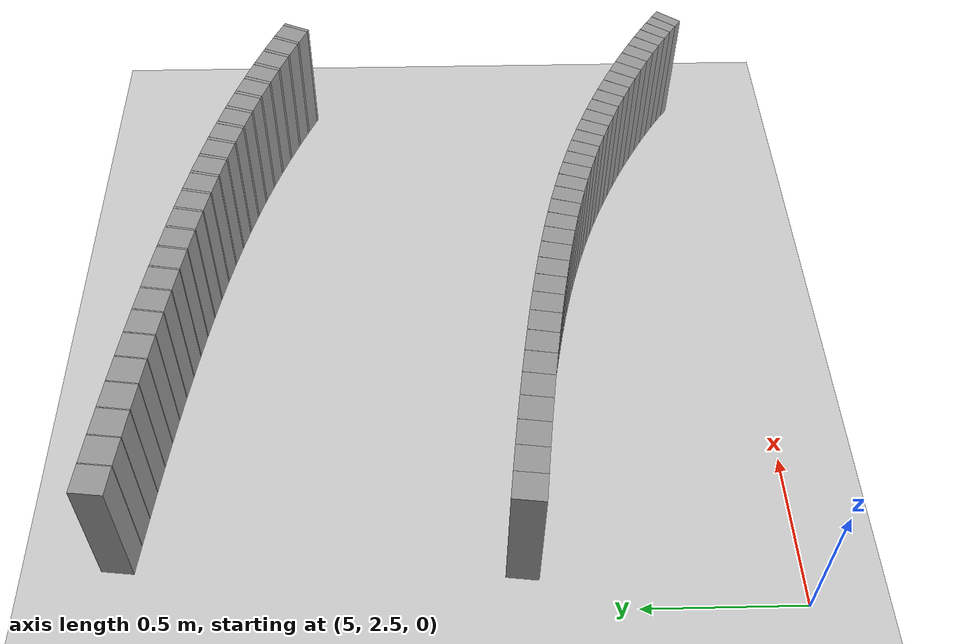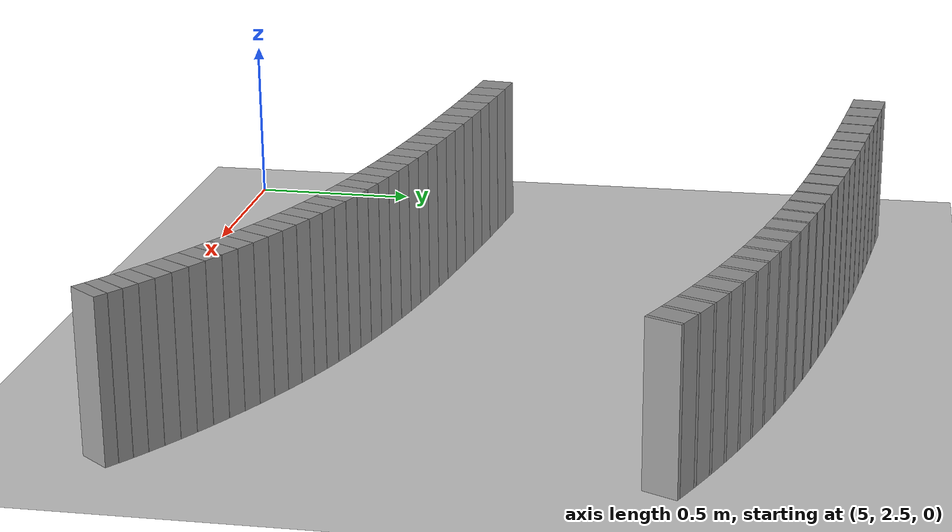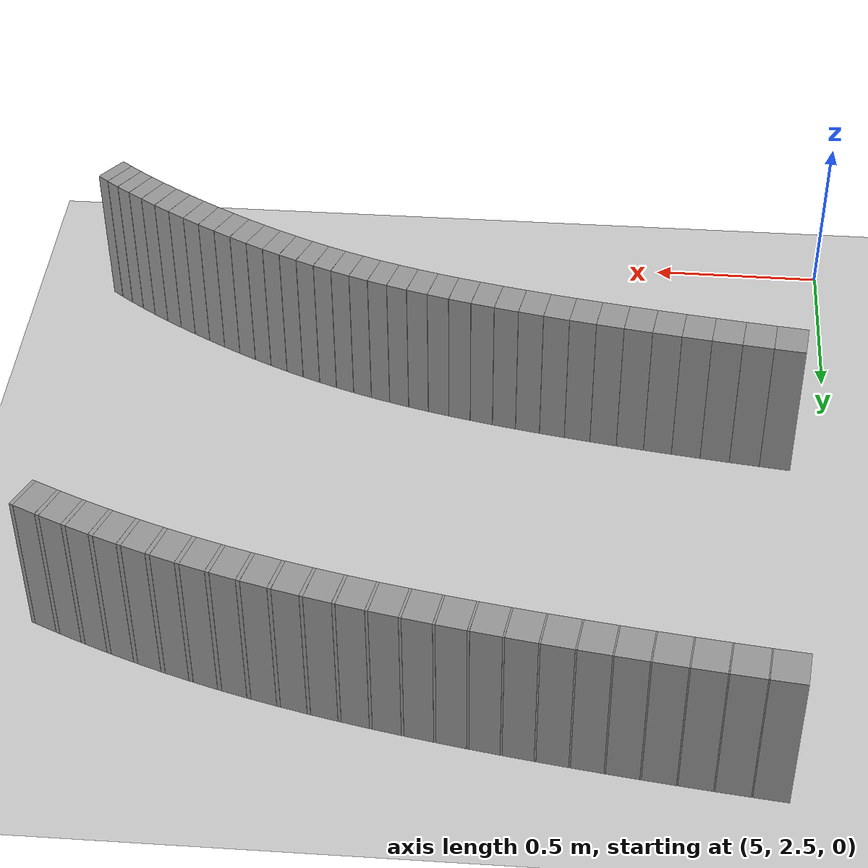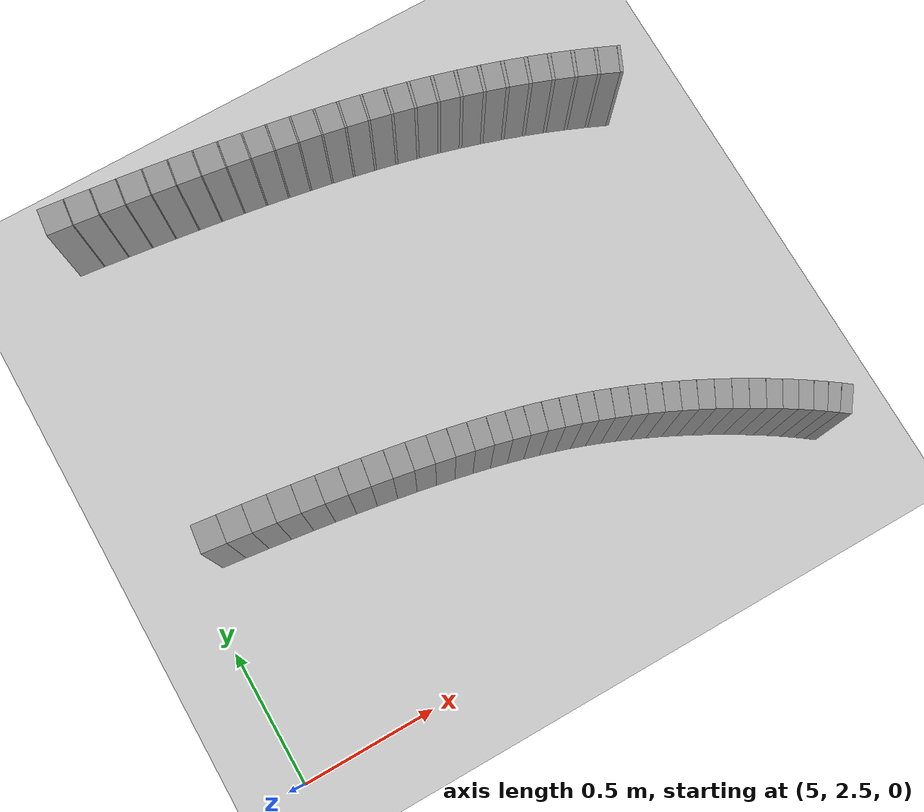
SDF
<sdf version="1.6">
 <world name="default">
  <include><uri>model://ground_plane</uri></include>
  <include><uri>model://sun</uri></include>
  <model name="wall_802_outward">
   <static>true</static>
   <link name="link">
    <collision name="collision">
     <geometry><box><size>0.038242317033586916 0.1 0.45</size></box></geometry>
    </collision>
    <visual name="visual">
     <geometry><box><size>0.038242317033586916 0.1 0.45</size></box></geometry>
     <material>
      <script><uri>file://media/materials/scripts/gazebo.material</uri><name>Gazebo/Gray</name></script>
     </material>
    </visual>
   </link>
   <pose>7.168864477292568 2.69422921812316 0.225 0 0 2.4924702044421876</pose>
  </model>
  <model name="wall_803_outward">
   <static>true</static>
   <link name="link">
    <collision name="collision">
     <geometry><box><size>0.04258518547714131 0.1 0.45</size></box></geometry>
    </collision>
    <visual name="visual">
     <geometry><box><size>0.04258518547714131 0.1 0.45</size></box></geometry>
     <material>
      <script><uri>file://media/materials/scripts/gazebo.material</uri><name>Gazebo/Gray</name></script>
     </material>
    </visual>
   </link>
   <pose>7.136335868385405 2.718205793104113 0.225 0 0 2.5189167862136808</pose>
  </model>
  <model name="wall_804_outward">
   <static>true</static>
   <link name="link">
    <collision name="collision">
     <geometry><box><size>0.04634672330390868 0.1 0.45</size></box></geometry>
    </collision>
    <visual name="visual">
     <geometry><box><size>0.04634672330390868 0.1 0.45</size></box></geometry>
     <material>
      <script><uri>file://media/materials/scripts/gazebo.material</uri><name>Gazebo/Gray</name></script>
     </material>
    </visual>
   </link>
   <pose>7.099903612297514 2.7436938421278008 0.225 0 0 2.5423603975698112</pose>
  </model>
  <model name="wall_805_outward">
   <static>true</static>
   <link name="link">
    <collision name="collision">
     <geometry><box><size>0.04948248564608676 0.1 0.45</size></box></geometry>
    </collision>
    <visual name="visual">
     <geometry><box><size>0.04948248564608676 0.1 0.45</size></box></geometry>
     <material>
      <script><uri>file://media/materials/scripts/gazebo.material</uri><name>Gazebo/Gray</name></script>
     </material>
    </visual>
   </link>
   <pose>7.060047574978048 2.770284268100689 0.225 0 0 2.5634443342759394</pose>
  </model>
  <model name="wall_806_outward">
   <static>true</static>
   <link name="link">
    <collision name="collision">
     <geometry><box><size>0.051990060496237916 0.1 0.45</size></box></geometry>
    </collision>
    <visual name="visual">
     <geometry><box><size>0.051990060496237916 0.1 0.45</size></box></geometry>
     <material>
      <script><uri>file://media/materials/scripts/gazebo.material</uri><name>Gazebo/Gray</name></script>
     </material>
    </visual>
   </link>
   <pose>7.017287153991127 2.7975876817618355 0.225 0 0 2.5827381035758443</pose>
  </model>
  <model name="wall_807_outward">
   <static>true</static>
   <link name="link">
    <collision name="collision">
     <geometry><box><size>0.053884182399699755 0.1 0.45</size></box></geometry>
    </collision>
    <visual name="visual">
     <geometry><box><size>0.053884182399699755 0.1 0.45</size></box></geometry>
     <material>
      <script><uri>file://media/materials/scripts/gazebo.material</uri><name>Gazebo/Gray</name></script>
     </material>
    </visual>
   </link>
   <pose>6.972149504210314 2.8252409459897985 0.225 0 0 2.60079617092309</pose>
  </model>
  <model name="wall_808_outward">
   <static>true</static>
   <link name="link">
    <collision name="collision">
     <geometry><box><size>0.05521312916296881 0.1 0.45</size></box></geometry>
    </collision>
    <visual name="visual">
     <geometry><box><size>0.05521312916296881 0.1 0.45</size></box></geometry>
     <material>
      <script><uri>file://media/materials/scripts/gazebo.material</uri><name>Gazebo/Gray</name></script>
     </material>
    </visual>
   </link>
   <pose>6.925142599260379 2.8529119413225437 0.225 0 0 2.6181020740563015</pose>
  </model>
  <model name="wall_809_outward">
   <static>true</static>
   <link name="link">
    <collision name="collision">
     <geometry><box><size>0.05602713953938882 0.1 0.45</size></box></geometry>
    </collision>
    <visual name="visual">
     <geometry><box><size>0.05602713953938882 0.1 0.45</size></box></geometry>
     <material>
      <script><uri>file://media/materials/scripts/gazebo.material</uri><name>Gazebo/Gray</name></script>
     </material>
    </visual>
   </link>
   <pose>6.87673681073194 2.880302741202522 0.225 0 0 2.635085670724866</pose>
  </model>
  <model name="wall_810_outward">
   <static>true</static>
   <link name="link">
    <collision name="collision">
     <geometry><box><size>0.056422150083031315 0.1 0.45</size></box></geometry>
    </collision>
    <visual name="visual">
     <geometry><box><size>0.056422150083031315 0.1 0.45</size></box></geometry>
     <material>
      <script><uri>file://media/materials/scripts/gazebo.material</uri><name>Gazebo/Gray</name></script>
     </material>
    </visual>
   </link>
   <pose>6.82734145121558 2.9071556521440742 0.225 0 0 2.6521572470372843</pose>
  </model>
  <model name="wall_811_outward">
   <static>true</static>
   <link name="link">
    <collision name="collision">
     <geometry><box><size>0.056501811116098435 0.1 0.45</size></box></geometry>
    </collision>
    <visual name="visual">
     <geometry><box><size>0.056501811116098435 0.1 0.45</size></box></geometry>
     <material>
      <script><uri>file://media/materials/scripts/gazebo.material</uri><name>Gazebo/Gray</name></script>
     </material>
    </visual>
   </link>
   <pose>6.777280799987066 2.933263983801722 0.225 0 0 2.6695637264377887</pose>
  </model>
  <model name="wall_812_outward">
   <static>true</static>
   <link name="link">
    <collision name="collision">
     <geometry><box><size>0.05635191686572317 0.1 0.45</size></box></geometry>
    </collision>
    <visual name="visual">
     <geometry><box><size>0.05635191686572317 0.1 0.45</size></box></geometry>
     <material>
      <script><uri>file://media/materials/scripts/gazebo.material</uri><name>Gazebo/Gray</name></script>
     </material>
    </visual>
   </link>
   <pose>6.726798296559092 2.958468170584054 0.225 0 0 2.687525306707204</pose>
  </model>
  <model name="wall_813_outward">
   <static>true</static>
   <link name="link">
    <collision name="collision">
     <geometry><box><size>0.056083336484518576 0.1 0.45</size></box></geometry>
    </collision>
    <visual name="visual">
     <geometry><box><size>0.056083336484518576 0.1 0.45</size></box></geometry>
     <material>
      <script><uri>file://media/materials/scripts/gazebo.material</uri><name>Gazebo/Gray</name></script>
     </material>
    </visual>
   </link>
   <pose>6.67605201909444 2.982654151380342 0.225 0 0 2.706188824063292</pose>
  </model>
  <model name="wall_814_outward">
   <static>true</static>
   <link name="link">
    <collision name="collision">
     <geometry><box><size>0.05580883810693003 0.1 0.45</size></box></geometry>
    </collision>
    <visual name="visual">
     <geometry><box><size>0.05580883810693003 0.1 0.45</size></box></geometry>
     <material>
      <script><uri>file://media/materials/scripts/gazebo.material</uri><name>Gazebo/Gray</name></script>
     </material>
    </visual>
   </link>
   <pose>6.625102245124215 3.005758067778912 0.225 0 0 2.7255814363818613</pose>
  </model>
  <model name="wall_815_outward">
   <static>true</static>
   <link name="link">
    <collision name="collision">
     <geometry><box><size>0.05562573891653821 0.1 0.45</size></box></geometry>
    </collision>
    <visual name="visual">
     <geometry><box><size>0.05562573891653821 0.1 0.45</size></box></geometry>
     <material>
      <script><uri>file://media/materials/scripts/gazebo.material</uri><name>Gazebo/Gray</name></script>
     </material>
    </visual>
   </link>
   <pose>6.573916814903124 3.027761602947307 0.225 0 0 2.7456451785266482</pose>
  </model>
  <model name="wall_816_outward">
   <static>true</static>
   <link name="link">
    <collision name="collision">
     <geometry><box><size>0.05561741763457717 0.1 0.45</size></box></geometry>
    </collision>
    <visual name="visual">
     <geometry><box><size>0.05561741763457717 0.1 0.45</size></box></geometry>
     <material>
      <script><uri>file://media/materials/scripts/gazebo.material</uri><name>Gazebo/Gray</name></script>
     </material>
    </visual>
   </link>
   <pose>6.522383245281677 3.0486834430116847 0.225 0 0 2.766231831947936</pose>
  </model>
  <model name="wall_817_outward">
   <static>true</static>
   <link name="link">
    <collision name="collision"><geometry><box><size>0.05584769248611 0.1 0.45</size></box></geometry></collision>
    <visual name="visual">
     <geometry><box><size>0.05584769248611 0.1 0.45</size></box></geometry>
     <material>
      <script><uri>file://media/materials/scripts/gazebo.material</uri><name>Gazebo/Gray</name></script>
     </material>
    </visual>
   </link>
   <pose>6.470322772616438 3.0685702645313278 0.225 0 0 2.787132671487821</pose>
  </model>
  <model name="wall_818_outward">
   <static>true</static>
   <link name="link">
    <collision name="collision">
     <geometry><box><size>0.056363490190861634 0.1 0.45</size></box></geometry>
    </collision>
    <visual name="visual">
     <geometry><box><size>0.056363490190861634 0.1 0.45</size></box></geometry>
     <material>
      <script><uri>file://media/materials/scripts/gazebo.material</uri><name>Gazebo/Gray</name></script>
     </material>
    </visual>
   </link>
   <pose>6.41750580800734 3.0874874473768266 0.225 0 0 2.8080961222094953</pose>
  </model>
  <model name="wall_819_outward">
   <static>true</static>
   <link name="link">
    <collision name="collision">
     <geometry><box><size>0.05719926621486981 0.1 0.45</size></box></geometry>
    </collision>
    <visual name="visual">
     <geometry><box><size>0.05719926621486981 0.1 0.45</size></box></geometry>
     <material>
      <script><uri>file://media/materials/scripts/gazebo.material</uri><name>Gazebo/Gray</name></script>
     </material>
    </visual>
   </link>
   <pose>6.363664624629209 3.1055125832829917 0.225 0 0 2.828826470897018</pose>
  </model>
  <model name="wall_820_outward">
   <static>true</static>
   <link name="link">
    <collision name="collision">
     <geometry><box><size>0.058346789809297986 0.1 0.45</size></box></geometry>
    </collision>
    <visual name="visual">
     <geometry><box><size>0.058346789809297986 0.1 0.45</size></box></geometry>
     <material>
      <script><uri>file://media/materials/scripts/gazebo.material</uri><name>Gazebo/Gray</name></script>
     </material>
    </visual>
   </link>
   <pose>6.3085188410530595 3.1227266841968095 0.225 0 0 2.84901499306586</pose>
  </model>
  <model name="wall_821_outward">
   <static>true</static>
   <link name="link">
    <collision name="collision">
     <geometry><box><size>0.05979230419529245 0.1 0.45</size></box></geometry>
    </collision>
    <visual name="visual">
     <geometry><box><size>0.05979230419529245 0.1 0.45</size></box></geometry>
     <material>
      <script><uri>file://media/materials/scripts/gazebo.material</uri><name>Gazebo/Gray</name></script>
     </material>
    </visual>
   </link>
   <pose>6.251797725432926 3.1392069295158116 0.225 0 0 2.8684061145394564</pose>
  </model>
  <model name="wall_822_outward">
   <static>true</static>
   <link name="link">
    <collision name="collision">
     <geometry><box><size>0.06150423191044382 0.1 0.45</size></box></geometry>
    </collision>
    <visual name="visual">
     <geometry><box><size>0.06150423191044382 0.1 0.45</size></box></geometry>
     <material>
      <script><uri>file://media/materials/scripts/gazebo.material</uri><name>Gazebo/Gray</name></script>
     </material>
    </visual>
   </link>
   <pose>6.19325138358998 3.1550255629941852 0.225 0 0 2.8867426427304137</pose>
  </model>
  <model name="wall_823_outward">
   <static>true</static>
   <link name="link">
    <collision name="collision">
     <geometry><box><size>0.06342707123407634 0.1 0.45</size></box></geometry>
    </collision>
    <visual name="visual">
     <geometry><box><size>0.06342707123407634 0.1 0.45</size></box></geometry>
     <material>
      <script><uri>file://media/materials/scripts/gazebo.material</uri><name>Gazebo/Gray</name></script>
     </material>
    </visual>
   </link>
   <pose>6.1326711003218835 3.1702473178162407 0.225 0 0 2.9038401630627417</pose>
  </model>
  <model name="wall_824_outward">
   <static>true</static>
   <link name="link">
    <collision name="collision">
     <geometry><box><size>0.0655048547804826 0.1 0.45</size></box></geometry>
    </collision>
    <visual name="visual">
     <geometry><box><size>0.0655048547804826 0.1 0.45</size></box></geometry>
     <material>
      <script><uri>file://media/materials/scripts/gazebo.material</uri><name>Gazebo/Gray</name></script>
     </material>
    </visual>
   </link>
   <pose>6.06990106730051 3.184928114988227 0.225 0 0 2.9195864742975464</pose>
  </model>
  <model name="wall_825_outward">
   <static>true</static>
   <link name="link">
    <collision name="collision">
     <geometry><box><size>0.0676770381414498 0.1 0.45</size></box></geometry>
    </collision>
    <visual name="visual">
     <geometry><box><size>0.0676770381414498 0.1 0.45</size></box></geometry>
     <material>
      <script><uri>file://media/materials/scripts/gazebo.material</uri><name>Gazebo/Gray</name></script>
     </material>
    </visual>
   </link>
   <pose>6.004841031081018 3.199116779979048 0.225 0 0 2.933917748657639</pose>
  </model>
  <model name="wall_826_outward">
   <static>true</static>
   <link name="link">
    <collision name="collision">
     <geometry><box><size>0.06988344098047915 0.1 0.45</size></box></geometry>
    </collision>
    <visual name="visual">
     <geometry><box><size>0.06988344098047915 0.1 0.45</size></box></geometry>
     <material>
      <script><uri>file://media/materials/scripts/gazebo.material</uri><name>Gazebo/Gray</name></script>
     </material>
    </visual>
   </link>
   <pose>5.937448337389976 3.212855350354433 0.225 0 0 2.9468543698673564</pose>
  </model>
  <model name="wall_827_outward">
   <static>true</static>
   <link name="link">
    <collision name="collision">
     <geometry><box><size>0.07207920211204283 0.1 0.45</size></box></geometry>
    </collision>
    <visual name="visual">
     <geometry><box><size>0.07207920211204283 0.1 0.45</size></box></geometry>
     <material>
      <script><uri>file://media/materials/scripts/gazebo.material</uri><name>Gazebo/Gray</name></script>
     </material>
    </visual>
   </link>
   <pose>5.867730102275232 3.2261799886765075 0.225 0 0 2.9584635036206013</pose>
  </model>
  <model name="wall_828_outward">
   <static>true</static>
   <link name="link">
    <collision name="collision">
     <geometry><box><size>0.07422277385725479 0.1 0.45</size></box></geometry>
    </collision>
    <visual name="visual">
     <geometry><box><size>0.07422277385725479 0.1 0.45</size></box></geometry>
     <material>
      <script><uri>file://media/materials/scripts/gazebo.material</uri><name>Gazebo/Gray</name></script>
     </material>
    </visual>
   </link>
   <pose>5.795734080435574 3.239121999225344 0.225 0 0 2.9688485700468905</pose>
  </model>
  <model name="wall_829_outward">
   <static>true</static>
   <link name="link">
    <collision name="collision">
     <geometry><box><size>0.07629238762877859 0.1 0.45</size></box></geometry>
    </collision>
    <visual name="visual">
     <geometry><box><size>0.07629238762877859 0.1 0.45</size></box></geometry>
     <material>
      <script><uri>file://media/materials/scripts/gazebo.material</uri><name>Gazebo/Gray</name></script>
     </material>
    </visual>
   </link>
   <pose>5.721537180102941 3.2517077383570867 0.225 0 0 2.9781550786518682</pose>
  </model>
  <model name="wall_830_outward">
   <static>true</static>
   <link name="link">
    <collision name="collision">
     <geometry><box><size>0.07826796892992702 0.1 0.45</size></box></geometry>
    </collision>
    <visual name="visual">
     <geometry><box><size>0.07826796892992702 0.1 0.45</size></box></geometry>
     <material>
      <script><uri>file://media/materials/scripts/gazebo.material</uri><name>Gazebo/Gray</name></script>
     </material>
    </visual>
   </link>
   <pose>5.645234966618402 3.263959016661807 0.225 0 0 2.9865159073022878</pose>
  </model>
  <model name="wall_831_outward">
   <static>true</static>
   <link name="link">
    <collision name="collision">
     <geometry><box><size>0.08014915424287852 0.1 0.45</size></box></geometry>
    </collision>
    <visual name="visual">
     <geometry><box><size>0.08014915424287852 0.1 0.45</size></box></geometry>
     <material>
      <script><uri>file://media/materials/scripts/gazebo.material</uri><name>Gazebo/Gray</name></script>
     </material>
    </visual>
   </link>
   <pose>5.566931129710806 3.2758927987192914 0.225 0 0 2.9940998083389627</pose>
  </model>
  <model name="wall_832_outward">
   <static>true</static>
   <link name="link">
    <collision name="collision">
     <geometry><box><size>0.081944593100771 0.1 0.45</size></box></geometry>
    </collision>
    <visual name="visual">
     <geometry><box><size>0.081944593100771 0.1 0.45</size></box></geometry>
     <material>
      <script><uri>file://media/materials/scripts/gazebo.material</uri><name>Gazebo/Gray</name></script>
     </material>
    </visual>
   </link>
   <pose>5.486723466757002 3.2875224038917388 0.225 0 0 3.001028268078703</pose>
  </model>
  <model name="wall_833_outward">
   <static>true</static>
   <link name="link">
    <collision name="collision">
     <geometry><box><size>0.08365701489718153 0.1 0.45</size></box></geometry>
    </collision>
    <visual name="visual">
     <geometry><box><size>0.08365701489718153 0.1 0.45</size></box></geometry>
     <material>
      <script><uri>file://media/materials/scripts/gazebo.material</uri><name>Gazebo/Gray</name></script>
     </material>
    </visual>
   </link>
   <pose>5.404702657656999 3.29885773797473 0.225 0 0 3.007429237449982</pose>
  </model>
  <model name="wall_834_outward">
   <static>true</static>
   <link name="link">
    <collision name="collision">
     <geometry><box><size>0.08529549776276966 0.1 0.45</size></box></geometry>
    </collision>
    <visual name="visual">
     <geometry><box><size>0.08529549776276966 0.1 0.45</size></box></geometry>
     <material>
      <script><uri>file://media/materials/scripts/gazebo.material</uri><name>Gazebo/Gray</name></script>
     </material>
    </visual>
   </link>
   <pose>5.32095224843286 3.309905059046084 0.225 0 0 3.013397178225109</pose>
  </model>
  <model name="wall_835_outward">
   <static>true</static>
   <link name="link">
    <collision name="collision">
     <geometry><box><size>0.08686435975517769 0.1 0.45</size></box></geometry>
    </collision>
    <visual name="visual">
     <geometry><box><size>0.08686435975517769 0.1 0.45</size></box></geometry>
     <material>
      <script><uri>file://media/materials/scripts/gazebo.material</uri><name>Gazebo/Gray</name></script>
     </material>
    </visual>
   </link>
   <pose>5.2355481195937905 3.320667507421602 0.225 0 0 3.019022661116299</pose>
  </model>
  <model name="wall_836_outward">
   <static>true</static>
   <link name="link">
    <collision name="collision">
     <geometry><box><size>0.08836388073677616 0.1 0.45</size></box></geometry>
    </collision>
    <visual name="visual">
     <geometry><box><size>0.08836388073677616 0.1 0.45</size></box></geometry>
     <material>
      <script><uri>file://media/materials/scripts/gazebo.material</uri><name>Gazebo/Gray</name></script>
     </material>
    </visual>
   </link>
   <pose>5.148563146592892 3.331145773383678 0.225 0 0 3.024351033801957</pose>
  </model>
  <model name="wall_1219_inward">
   <static>true</static>
   <link name="link">
    <collision name="collision">
     <geometry><box><size>0.011635385065850583 0.1 0.45</size></box></geometry>
    </collision>
    <visual name="visual">
     <geometry><box><size>0.011635385065850583 0.1 0.45</size></box></geometry>
     <material>
      <script><uri>file://media/materials/scripts/gazebo.material</uri><name>Gazebo/Gray</name></script>
     </material>
    </visual>
   </link>
   <pose>7.146184956540358 4.087377605772925 0.225 0 0 2.7158851302225244</pose>
  </model>
  <model name="wall_1220_inward">
   <static>true</static>
   <link name="link">
    <collision name="collision">
     <geometry><box><size>0.06764612870541839 0.1 0.45</size></box></geometry>
    </collision>
    <visual name="visual">
     <geometry><box><size>0.06764612870541839 0.1 0.45</size></box></geometry>
     <material>
      <script><uri>file://media/materials/scripts/gazebo.material</uri><name>Gazebo/Gray</name></script>
     </material>
    </visual>
   </link>
   <pose>7.10994827952236 4.103448521898246 0.225 0 0 2.7255814363818636</pose>
  </model>
  <model name="wall_1221_inward">
   <static>true</static>
   <link name="link">
    <collision name="collision">
     <geometry><box><size>0.012038043369519226 0.1 0.45</size></box></geometry>
    </collision>
    <visual name="visual">
     <geometry><box><size>0.012038043369519226 0.1 0.45</size></box></geometry>
     <material>
      <script><uri>file://media/materials/scripts/gazebo.material</uri><name>Gazebo/Gray</name></script>
     </material>
    </visual>
   </link>
   <pose>7.073480275254373 4.119493957278721 0.225 0 0 2.7356133074542583</pose>
  </model>
  <model name="wall_1222_inward">
   <static>true</static>
   <link name="link">
    <collision name="collision">
     <geometry><box><size>0.06782127764298033 0.1 0.45</size></box></geometry>
    </collision>
    <visual name="visual">
     <geometry><box><size>0.06782127764298033 0.1 0.45</size></box></geometry>
     <material>
      <script><uri>file://media/materials/scripts/gazebo.material</uri><name>Gazebo/Gray</name></script>
     </material>
    </visual>
   </link>
   <pose>7.036663477880751 4.134949722490077 0.225 0 0 2.7456451785266442</pose>
  </model>
  <model name="wall_1223_inward">
   <static>true</static>
   <link name="link">
    <collision name="collision">
     <geometry><box><size>0.012351773933034932 0.1 0.45</size></box></geometry>
    </collision>
    <visual name="visual">
     <geometry><box><size>0.012351773933034932 0.1 0.45</size></box></geometry>
     <material>
      <script><uri>file://media/materials/scripts/gazebo.material</uri><name>Gazebo/Gray</name></script>
     </material>
    </visual>
   </link>
   <pose>6.999654168591315 4.1503516180358435 0.225 0 0 2.7559385052373147</pose>
  </model>
  <model name="wall_1224_inward">
   <static>true</static>
   <link name="link">
    <collision name="collision">
     <geometry><box><size>0.06806411192377342 0.1 0.45</size></box></geometry>
    </collision>
    <visual name="visual">
     <geometry><box><size>0.06806411192377342 0.1 0.45</size></box></geometry>
     <material>
      <script><uri>file://media/materials/scripts/gazebo.material</uri><name>Gazebo/Gray</name></script>
     </material>
    </visual>
   </link>
   <pose>6.962269296937439 4.165151205098985 0.225 0 0 2.766231831947927</pose>
  </model>
  <model name="wall_1225_inward">
   <static>true</static>
   <link name="link">
    <collision name="collision">
     <geometry><box><size>0.012540275464450142 0.1 0.45</size></box></geometry>
    </collision>
    <visual name="visual">
     <geometry><box><size>0.012540275464450142 0.1 0.45</size></box></geometry>
     <material>
      <script><uri>file://media/materials/scripts/gazebo.material</uri><name>Gazebo/Gray</name></script>
     </material>
    </visual>
   </link>
   <pose>6.92474942403182 4.17986523411195 0.225 0 0 2.7766822517179</pose>
  </model>
  <model name="wall_1226_inward">
   <static>true</static>
   <link name="link">
    <collision name="collision">
     <geometry><box><size>0.06840743816365874 0.1 0.45</size></box></geometry>
    </collision>
    <visual name="visual">
     <geometry><box><size>0.06840743816365874 0.1 0.45</size></box></geometry>
     <material>
      <script><uri>file://media/materials/scripts/gazebo.material</uri><name>Gazebo/Gray</name></script>
     </material>
    </visual>
   </link>
   <pose>6.886814726247623 4.1939743931218985 0.225 0 0 2.7871326714878233</pose>
  </model>
  <model name="wall_1227_inward">
   <static>true</static>
   <link name="link">
    <collision name="collision">
     <geometry><box><size>0.012577840116026282 0.1 0.45</size></box></geometry>
    </collision>
    <visual name="visual">
     <geometry><box><size>0.012577840116026282 0.1 0.45</size></box></geometry>
     <material>
      <script><uri>file://media/materials/scripts/gazebo.material</uri><name>Gazebo/Gray</name></script>
     </material>
    </visual>
   </link>
   <pose>6.848816795275042 4.207966799410345 0.225 0 0 2.7976143968486658</pose>
  </model>
  <model name="wall_1228_inward">
   <static>true</static>
   <link name="link">
    <collision name="collision">
     <geometry><box><size>0.06887208307186565 0.1 0.45</size></box></geometry>
    </collision>
    <visual name="visual">
     <geometry><box><size>0.06887208307186565 0.1 0.45</size></box></geometry>
     <material>
      <script><uri>file://media/materials/scripts/gazebo.material</uri><name>Gazebo/Gray</name></script>
     </material>
    </visual>
   </link>
   <pose>6.810357539517365 4.221360243713529 0.225 0 0 2.8080961222094842</pose>
  </model>
  <model name="wall_1229_inward">
   <static>true</static>
   <link name="link">
    <collision name="collision">
     <geometry><box><size>0.01243798649340642 0.1 0.45</size></box></geometry>
    </collision>
    <visual name="visual">
     <geometry><box><size>0.01243798649340642 0.1 0.45</size></box></geometry>
     <material>
      <script><uri>file://media/materials/scripts/gazebo.material</uri><name>Gazebo/Gray</name></script>
     </material>
    </visual>
   </link>
   <pose>6.771921668208957 4.234607607290517 0.225 0 0 2.8184612965531963</pose>
  </model>
  <model name="wall_1230_inward">
   <static>true</static>
   <link name="link">
    <collision name="collision">
     <geometry><box><size>0.06947535591917228 0.1 0.45</size></box></geometry>
    </collision>
    <visual name="visual">
     <geometry><box><size>0.06947535591917228 0.1 0.45</size></box></geometry>
     <material>
      <script><uri>file://media/materials/scripts/gazebo.material</uri><name>Gazebo/Gray</name></script>
     </material>
    </visual>
   </link>
   <pose>6.732972117306808 4.247270868761591 0.225 0 0 2.8288264708970234</pose>
  </model>
  <model name="wall_1231_inward">
   <static>true</static>
   <link name="link">
    <collision name="collision">
     <geometry><box><size>0.01211290759320563 0.1 0.45</size></box></geometry>
    </collision>
    <visual name="visual">
     <geometry><box><size>0.01211290759320563 0.1 0.45</size></box></geometry>
     <material>
      <script><uri>file://media/materials/scripts/gazebo.material</uri><name>Gazebo/Gray</name></script>
     </material>
    </visual>
   </link>
   <pose>6.694138551851571 4.259764624912056 0.225 0 0 2.838920731981458</pose>
  </model>
  <model name="wall_1232_inward">
   <static>true</static>
   <link name="link">
    <collision name="collision">
     <geometry><box><size>0.0702210709105181 0.1 0.45</size></box></geometry>
    </collision>
    <visual name="visual">
     <geometry><box><size>0.0702210709105181 0.1 0.45</size></box></geometry>
     <material>
      <script><uri>file://media/materials/scripts/gazebo.material</uri><name>Gazebo/Gray</name></script>
     </material>
    </visual>
   </link>
   <pose>6.654738939133777 4.271696508863393 0.225 0 0 2.849014993065865</pose>
  </model>
  <model name="wall_1233_inward">
   <static>true</static>
   <link name="link">
    <collision name="collision">
     <geometry><box><size>0.011634490600918257 0.1 0.45</size></box></geometry>
    </collision>
    <visual name="visual">
     <geometry><box><size>0.011634490600918257 0.1 0.45</size></box></geometry>
     <material>
      <script><uri>file://media/materials/scripts/gazebo.material</uri><name>Gazebo/Gray</name></script>
     </material>
    </visual>
   </link>
   <pose>6.6155344361847614 4.283446869976265 0.225 0 0 2.8587105538026303</pose>
  </model>
  <model name="wall_1234_inward">
   <static>true</static>
   <link name="link">
    <collision name="collision">
     <geometry><box><size>0.07111093552225216 0.1 0.45</size></box></geometry>
    </collision>
    <visual name="visual">
     <geometry><box><size>0.07111093552225216 0.1 0.45</size></box></geometry>
     <material>
      <script><uri>file://media/materials/scripts/gazebo.material</uri><name>Gazebo/Gray</name></script>
     </material>
    </visual>
   </link>
   <pose>6.575711466776297 4.29466351164997 0.225 0 0 2.8684061145394564</pose>
  </model>
  <model name="wall_1235_inward">
   <static>true</static>
   <link name="link">
    <collision name="collision">
     <geometry><box><size>0.011001762783739034 0.1 0.45</size></box></geometry>
    </collision>
    <visual name="visual">
     <geometry><box><size>0.011001762783739034 0.1 0.45</size></box></geometry>
     <material>
      <script><uri>file://media/materials/scripts/gazebo.material</uri><name>Gazebo/Gray</name></script>
     </material>
    </visual>
   </link>
   <pose>6.536164264817147 4.305691937769326 0.225 0 0 2.8775743786350145</pose>
  </model>
  <model name="wall_1236_inward">
   <static>true</static>
   <link name="link">
    <collision name="collision">
     <geometry><box><size>0.07213472555869858 0.1 0.45</size></box></geometry>
    </collision>
    <visual name="visual">
     <geometry><box><size>0.07213472555869858 0.1 0.45</size></box></geometry>
     <material>
      <script><uri>file://media/materials/scripts/gazebo.material</uri><name>Gazebo/Gray</name></script>
     </material>
    </visual>
   </link>
   <pose>6.495951566277151 4.316220048835053 0.225 0 0 2.8867426427304084</pose>
  </model>
  <model name="wall_1237_inward">
   <static>true</static>
   <link name="link">
    <collision name="collision">
     <geometry><box><size>0.010258387248959128 0.1 0.45</size></box></geometry>
    </collision>
    <visual name="visual">
     <geometry><box><size>0.010258387248959128 0.1 0.45</size></box></geometry>
     <material>
      <script><uri>file://media/materials/scripts/gazebo.material</uri><name>Gazebo/Gray</name></script>
     </material>
    </visual>
   </link>
   <pose>6.456074739900801 4.326563232966778 0.225 0 0 2.895291402896525</pose>
  </model>
  <model name="wall_1238_inward">
   <static>true</static>
   <link name="link">
    <collision name="collision">
     <geometry><box><size>0.07328044326717344 0.1 0.45</size></box></geometry>
    </collision>
    <visual name="visual">
     <geometry><box><size>0.07328044326717344 0.1 0.45</size></box></geometry>
     <material>
      <script><uri>file://media/materials/scripts/gazebo.material</uri><name>Gazebo/Gray</name></script>
     </material>
    </visual>
   </link>
   <pose>6.415490817433762 4.336443291355009 0.225 0 0 2.903840163062755</pose>
  </model>
  <model name="wall_1239_inward">
   <static>true</static>
   <link name="link">
    <collision name="collision">
     <geometry><box><size>0.009447689135182668 0.1 0.45</size></box></geometry>
    </collision>
    <visual name="visual">
     <geometry><box><size>0.009447689135182668 0.1 0.45</size></box></geometry>
     <material>
      <script><uri>file://media/materials/scripts/gazebo.material</uri><name>Gazebo/Gray</name></script>
     </material>
    </visual>
   </link>
   <pose>6.375281715401485 4.346149132776726 0.225 0 0 2.911713318680165</pose>
  </model>
  <model name="wall_1240_inward">
   <static>true</static>
   <link name="link">
    <collision name="collision">
     <geometry><box><size>0.07452830165473252 0.1 0.45</size></box></geometry>
    </collision>
    <visual name="visual">
     <geometry><box><size>0.07452830165473252 0.1 0.45</size></box></geometry>
     <material>
      <script><uri>file://media/materials/scripts/gazebo.material</uri><name>Gazebo/Gray</name></script>
     </material>
    </visual>
   </link>
   <pose>6.334332534737673 4.355430590033255 0.225 0 0 2.9195864742975446</pose>
  </model>
  <model name="wall_1241_inward">
   <static>true</static>
   <link name="link">
    <collision name="collision">
     <geometry><box><size>0.00859869103037372 0.1 0.45</size></box></geometry>
    </collision>
    <visual name="visual">
     <geometry><box><size>0.00859869103037372 0.1 0.45</size></box></geometry>
     <material>
      <script><uri>file://media/materials/scripts/gazebo.material</uri><name>Gazebo/Gray</name></script>
     </material>
    </visual>
   </link>
   <pose>6.293782427410061 4.36455225642143 0.225 0 0 2.926752111477495</pose>
  </model>
  <model name="wall_1242_inward">
   <static>true</static>
   <link name="link">
    <collision name="collision">
     <geometry><box><size>0.0758575345262727 0.1 0.45</size></box></geometry>
    </collision>
    <visual name="visual">
     <geometry><box><size>0.0758575345262727 0.1 0.45</size></box></geometry>
     <material>
      <script><uri>file://media/materials/scripts/gazebo.material</uri><name>Gazebo/Gray</name></script>
     </material>
    </visual>
   </link>
   <pose>6.252468131807847 4.373289196089003 0.225 0 0 2.93391774865765</pose>
  </model>
  <model name="wall_1243_inward">
   <static>true</static>
   <link name="link">
    <collision name="collision">
     <geometry><box><size>0.007761918600359711 0.1 0.45</size></box></geometry>
    </collision>
    <visual name="visual">
     <geometry><box><size>0.007761918600359711 0.1 0.45</size></box></geometry>
     <material>
      <script><uri>file://media/materials/scripts/gazebo.material</uri><name>Gazebo/Gray</name></script>
     </material>
    </visual>
   </link>
   <pose>6.211551676080531 4.38188516766459 0.225 0 0 2.940386059262434</pose>
  </model>
  <model name="wall_1244_inward">
   <static>true</static>
   <link name="link">
    <collision name="collision">
     <geometry><box><size>0.07724726071102259 0.1 0.45</size></box></geometry>
    </collision>
    <visual name="visual">
     <geometry><box><size>0.07724726071102259 0.1 0.45</size></box></geometry>
     <material>
      <script><uri>file://media/materials/scripts/gazebo.material</uri><name>Gazebo/Gray</name></script>
     </material>
    </visual>
   </link>
   <pose>6.169855430738436 4.390134834000659 0.225 0 0 2.9468543698673555</pose>
  </model>
  <model name="wall_1245_inward">
   <static>true</static>
   <link name="link">
    <collision name="collision">
     <geometry><box><size>0.006965441137366239 0.1 0.45</size></box></geometry>
    </collision>
    <visual name="visual">
     <geometry><box><size>0.006965441137366239 0.1 0.45</size></box></geometry>
     <material>
      <script><uri>file://media/materials/scripts/gazebo.material</uri><name>Gazebo/Gray</name></script>
     </material>
    </visual>
   </link>
   <pose>6.128541105066511 4.398262979558799 0.225 0 0 2.9526589367439353</pose>
  </model>
  <model name="wall_1246_inward">
   <static>true</static>
   <link name="link">
    <collision name="collision">
     <geometry><box><size>0.07867752928200922 0.1 0.45</size></box></geometry>
    </collision>
    <visual name="visual">
     <geometry><box><size>0.07867752928200922 0.1 0.45</size></box></geometry>
     <material>
      <script><uri>file://media/materials/scripts/gazebo.material</uri><name>Gazebo/Gray</name></script>
     </material>
    </visual>
   </link>
   <pose>6.086439391279585 4.406080950883895 0.225 0 0 2.9584635036206124</pose>
  </model>
  <model name="wall_1247_inward">
   <static>true</static>
   <link name="link">
    <collision name="collision">
     <geometry><box><size>0.006231011855168982 0.1 0.45</size></box></geometry>
    </collision>
    <visual name="visual">
     <geometry><box><size>0.006231011855168982 0.1 0.45</size></box></geometry>
     <material>
      <script><uri>file://media/materials/scripts/gazebo.material</uri><name>Gazebo/Gray</name></script>
     </material>
    </visual>
   </link>
   <pose>6.044692108017153 4.413796268454069 0.225 0 0 2.963656036833769</pose>
  </model>
  <model name="wall_1248_inward">
   <static>true</static>
   <link name="link">
    <collision name="collision">
     <geometry><box><size>0.08013029451890581 0.1 0.45</size></box></geometry>
    </collision>
    <visual name="visual">
     <geometry><box><size>0.08013029451890581 0.1 0.45</size></box></geometry>
     <material>
      <script><uri>file://media/materials/scripts/gazebo.material</uri><name>Gazebo/Gray</name></script>
     </material>
    </visual>
   </link>
   <pose>6.002156942886808 4.421234357689068 0.225 0 0 2.968848570046875</pose>
  </model>
  <model name="wall_1249_inward">
   <static>true</static>
   <link name="link">
    <collision name="collision">
     <geometry><box><size>0.0055838850118405175 0.1 0.45</size></box></geometry>
    </collision>
    <visual name="visual">
     <geometry><box><size>0.0055838850118405175 0.1 0.45</size></box></geometry>
     <material>
      <script><uri>file://media/materials/scripts/gazebo.material</uri><name>Gazebo/Gray</name></script>
     </material>
    </visual>
   </link>
   <pose>5.959935500195478 4.428588098108319 0.225 0 0 2.973501824349418</pose>
  </model>
  <model name="wall_1250_inward">
   <static>true</static>
   <link name="link">
    <collision name="collision">
     <geometry><box><size>0.08159262356816285 0.1 0.45</size></box></geometry>
    </collision>
    <visual name="visual">
     <geometry><box><size>0.08159262356816285 0.1 0.45</size></box></geometry>
     <material>
      <script><uri>file://media/materials/scripts/gazebo.material</uri><name>Gazebo/Gray</name></script>
     </material>
    </visual>
   </link>
   <pose>5.916930256126861 4.435693196867741 0.225 0 0 2.978155078651866</pose>
  </model>
  <model name="wall_1251_inward">
   <static>true</static>
   <link name="link">
    <collision name="collision">
     <geometry><box><size>0.00501648257899438 0.1 0.45</size></box></geometry>
    </collision>
    <visual name="visual">
     <geometry><box><size>0.00501648257899438 0.1 0.45</size></box></geometry>
     <material>
      <script><uri>file://media/materials/scripts/gazebo.material</uri><name>Gazebo/Gray</name></script>
     </material>
    </visual>
   </link>
   <pose>5.874201104442582 4.442728971522625 0.225 0 0 2.982335492977144</pose>
  </model>
  <model name="wall_1252_inward">
   <static>true</static>
   <link name="link">
    <collision name="collision">
     <geometry><box><size>0.083051413352305 0.1 0.45</size></box></geometry>
    </collision>
    <visual name="visual">
     <geometry><box><size>0.083051413352305 0.1 0.45</size></box></geometry>
     <material>
      <script><uri>file://media/materials/scripts/gazebo.material</uri><name>Gazebo/Gray</name></script>
     </material>
    </visual>
   </link>
   <pose>5.830697219148533 4.449540631932663 0.225 0 0 2.986515907302286</pose>
  </model>
  <model name="wall_1253_inward">
   <static>true</static>
   <link name="link">
    <collision name="collision">
     <geometry><box><size>0.0045503297172030275 0.1 0.45</size></box></geometry>
    </collision>
    <visual name="visual">
     <geometry><box><size>0.0045503297172030275 0.1 0.45</size></box></geometry>
     <material>
      <script><uri>file://media/materials/scripts/gazebo.material</uri><name>Gazebo/Gray</name></script>
     </material>
    </visual>
   </link>
   <pose>5.787420655723276 4.456297409775627 0.225 0 0 2.9903078578206848</pose>
  </model>
  <model name="wall_1254_inward">
   <static>true</static>
   <link name="link">
    <collision name="collision">
     <geometry><box><size>0.08450288169545303 0.1 0.45</size></box></geometry>
    </collision>
    <visual name="visual">
     <geometry><box><size>0.08450288169545303 0.1 0.45</size></box></geometry>
     <material>
      <script><uri>file://media/materials/scripts/gazebo.material</uri><name>Gazebo/Gray</name></script>
     </material>
    </visual>
   </link>
   <pose>5.743378775686742 4.462849511449743 0.225 0 0 2.9940998083389614</pose>
  </model>
  <model name="wall_1255_inward">
   <static>true</static>
   <link name="link">
    <collision name="collision">
     <geometry><box><size>0.004157067529083334 0.1 0.45</size></box></geometry>
    </collision>
    <visual name="visual">
     <geometry><box><size>0.004157067529083334 0.1 0.45</size></box></geometry>
     <material>
      <script><uri>file://media/materials/scripts/gazebo.material</uri><name>Gazebo/Gray</name></script>
     </material>
    </visual>
   </link>
   <pose>5.6995290619739665 4.469357061103984 0.225 0 0 2.9975640382088384</pose>
  </model>
  <model name="wall_1256_inward">
   <static>true</static>
   <link name="link">
    <collision name="collision">
     <geometry><box><size>0.08594343670546843 0.1 0.45</size></box></geometry>
    </collision>
    <visual name="visual">
     <geometry><box><size>0.08594343670546843 0.1 0.45</size></box></geometry>
     <material>
      <script><uri>file://media/materials/scripts/gazebo.material</uri><name>Gazebo/Gray</name></script>
     </material>
    </visual>
   </link>
   <pose>5.654924157935141 4.475675817280714 0.225 0 0 3.001028268078703</pose>
  </model>
  <model name="wall_1257_inward">
   <static>true</static>
   <link name="link">
    <collision name="collision">
     <geometry><box><size>0.0038405750661929484 0.1 0.45</size></box></geometry>
    </collision>
    <visual name="visual">
     <geometry><box><size>0.0038405750661929484 0.1 0.45</size></box></geometry>
     <material>
      <script><uri>file://media/materials/scripts/gazebo.material</uri><name>Gazebo/Gray</name></script>
     </material>
    </visual>
   </link>
   <pose>5.610474066897961 4.481959188509582 0.225 0 0 3.004228752764271</pose>
  </model>
  <model name="wall_1258_inward">
   <static>true</static>
   <link name="link">
    <collision name="collision">
     <geometry><box><size>0.08736769981164492 0.1 0.45</size></box></geometry>
    </collision>
    <visual name="visual">
     <geometry><box><size>0.08736769981164492 0.1 0.45</size></box></geometry>
     <material>
      <script><uri>file://media/materials/scripts/gazebo.material</uri><name>Gazebo/Gray</name></script>
     </material>
    </visual>
   </link>
   <pose>5.565280579190052 4.4880653461471915 0.225 0 0 3.0074292374499887</pose>
  </model>
  <model name="wall_1259_inward">
   <static>true</static>
   <link name="link">
    <collision name="collision">
     <geometry><box><size>0.0035807591511751637 0.1 0.45</size></box></geometry>
    </collision>
    <visual name="visual">
     <geometry><box><size>0.0035807591511751637 0.1 0.45</size></box></geometry>
     <material>
      <script><uri>file://media/materials/scripts/gazebo.material</uri><name>Gazebo/Gray</name></script>
     </material>
    </visual>
   </link>
   <pose>5.520214293498883 4.494142742344277 0.225 0 0 3.0104132078374386</pose>
  </model>
  <model name="wall_1260_inward">
   <static>true</static>
   <link name="link">
    <collision name="collision">
     <geometry><box><size>0.08877353462721517 0.1 0.45</size></box></geometry>
    </collision>
    <visual name="visual">
     <geometry><box><size>0.08877353462721517 0.1 0.45</size></box></geometry>
     <material>
      <script><uri>file://media/materials/scripts/gazebo.material</uri><name>Gazebo/Gray</name></script>
     </material>
    </visual>
   </link>
   <pose>5.474416757616915 4.50005154039184 0.225 0 0 3.0133971782251128</pose>
  </model>
  <model name="wall_1261_inward">
   <static>true</static>
   <link name="link">
    <collision name="collision">
     <geometry><box><size>0.0033752852841085032 0.1 0.45</size></box></geometry>
    </collision>
    <visual name="visual">
     <geometry><box><size>0.0033752852841085032 0.1 0.45</size></box></geometry>
     <material>
      <script><uri>file://media/materials/scripts/gazebo.material</uri><name>Gazebo/Gray</name></script>
     </material>
    </visual>
   </link>
   <pose>5.428719824479744 4.5059371977023 0.225 0 0 3.016209919670839</pose>
  </model>
  <model name="wall_1262_inward">
   <static>true</static>
   <link name="link">
    <collision name="collision">
     <geometry><box><size>0.09015052466083967 0.1 0.45</size></box></geometry>
    </collision>
    <visual name="visual">
     <geometry><box><size>0.09015052466083967 0.1 0.45</size></box></geometry>
     <material>
      <script><uri>file://media/materials/scripts/gazebo.material</uri><name>Gazebo/Gray</name></script>
     </material>
    </visual>
   </link>
   <pose>5.382308335937953 4.5116592961778546 0.225 0 0 3.019022661116295</pose>
  </model>
  <model name="wall_1263_inward">
   <static>true</static>
   <link name="link">
    <collision name="collision">
     <geometry><box><size>0.003197019829375295 0.1 0.45</size></box></geometry>
    </collision>
    <visual name="visual">
     <geometry><box><size>0.003197019829375295 0.1 0.45</size></box></geometry>
     <material>
      <script><uri>file://media/materials/scripts/gazebo.material</uri><name>Gazebo/Gray</name></script>
     </material>
    </visual>
   </link>
   <pose>5.335984209370613 4.517361559056353 0.225 0 0 3.0216868474592093</pose>
  </model>
  <model name="wall_1264_inward">
   <static>true</static>
   <link name="link">
    <collision name="collision">
     <geometry><box><size>0.09149028041873096 0.1 0.45</size></box></geometry>
    </collision>
    <visual name="visual">
     <geometry><box><size>0.09149028041873096 0.1 0.45</size></box></geometry>
     <material>
      <script><uri>file://media/materials/scripts/gazebo.material</uri><name>Gazebo/Gray</name></script>
     </material>
    </visual>
   </link>
   <pose>5.2889660738694335 4.522903726686016 0.225 0 0 3.024351033801956</pose>
  </model>
  <model name="wall_1265_inward">
   <static>true</static>
   <link name="link">
    <collision name="collision">
     <geometry><box><size>0.0030557582806129773 0.1 0.45</size></box></geometry>
    </collision>
    <visual name="visual">
     <geometry><box><size>0.0030557582806129773 0.1 0.45</size></box></geometry>
     <material>
      <script><uri>file://media/materials/scripts/gazebo.material</uri><name>Gazebo/Gray</name></script>
     </material>
    </visual>
   </link>
   <pose>5.24201713028984 4.528429539022092 0.225 0 0 3.0268975017875945</pose>
  </model>
  <model name="wall_1266_inward">
   <static>true</static>
   <link name="link">
    <collision name="collision">
     <geometry><box><size>0.09277586444762438 0.1 0.45</size></box></geometry>
    </collision>
    <visual name="visual">
     <geometry><box><size>0.09277586444762438 0.1 0.45</size></box></geometry>
     <material>
      <script><uri>file://media/materials/scripts/gazebo.material</uri><name>Gazebo/Gray</name></script>
     </material>
    </visual>
   </link>
   <pose>5.1944027699998765 4.533795842523543 0.225 0 0 3.0294439697738382</pose>
  </model>
 </world>
</sdf>
